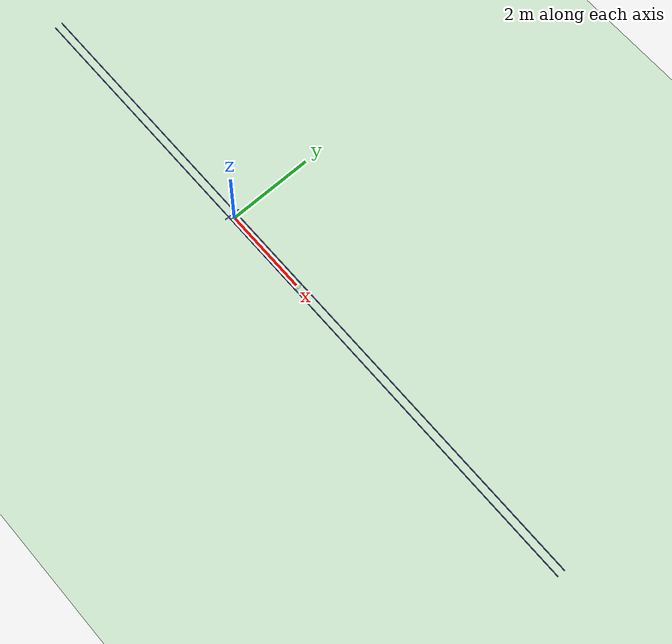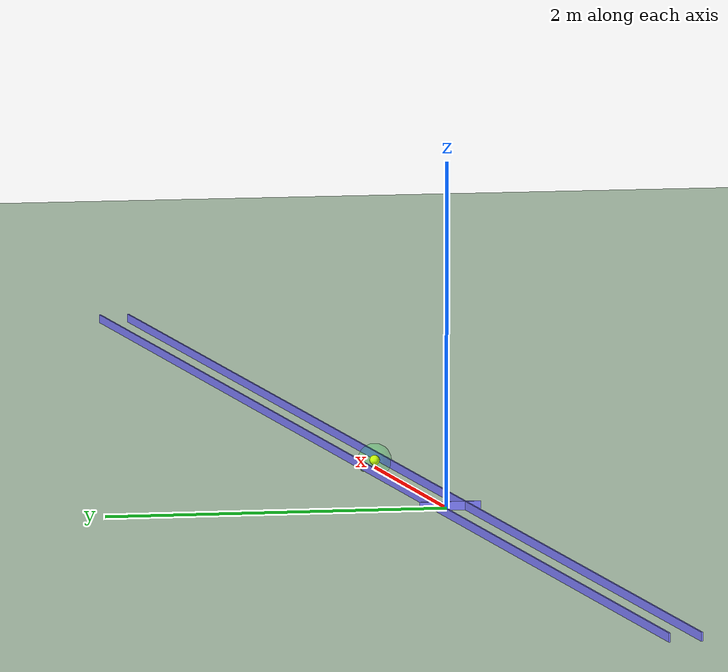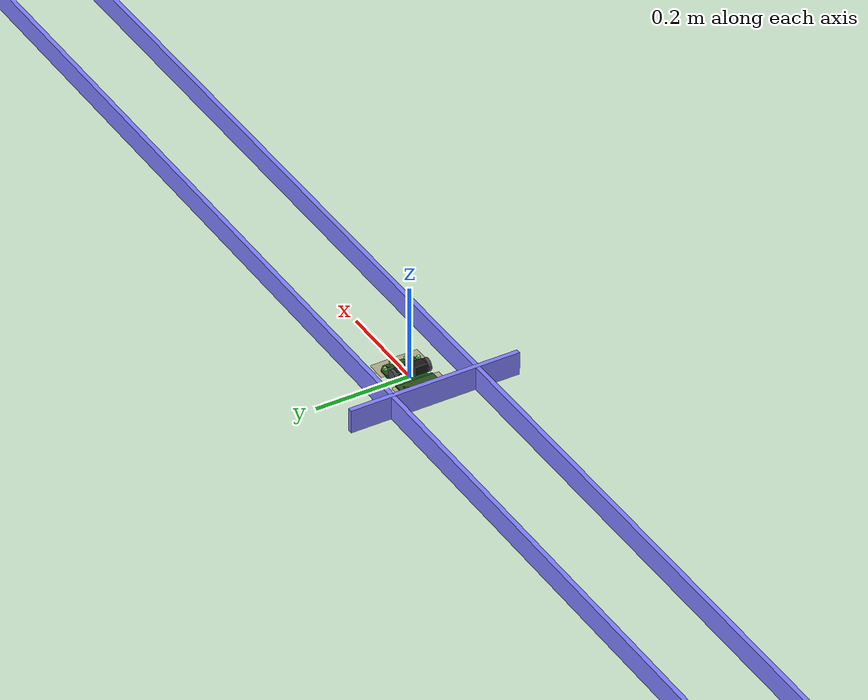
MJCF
<mujoco>
    <default>
        <default class="wheel">
            <geom type="cylinder" size=".0027 .0007" rgba=".5 .5 1 1" />
        </default>
    </default>

    <compiler angle="degree" coordinate="local" inertiafromgeom="true" />
    <option integrator="RK4" timestep="0.0001" />
    <asset>
        <texture builtin="gradient" height="100" rgb1="1 1 1" rgb2="0 0 0" type="skybox" width="100" />
        <texture builtin="flat" height="1278" mark="cross" markrgb="1 1 1" name="texgeom"
            random="0.01" rgb1="0.8 0.6 0.4" rgb2="0.8 0.6 0.4" type="cube" width="127" />
        <texture builtin="checker" height="100" name="texplane" rgb1="0 0 0" rgb2="0.8 0.8 0.8"
            type="2d" width="100" />
        <material name="MatPlane" reflectance="0.5" shininess="1" specular="1" texrepeat="60 60"
            texture="texplane" />
        <material name="geom" texture="texgeom" texuniform="true" />
    </asset>

    <worldbody>

        <geom conaffinity="1" condim="3" name="floor" friction="0.0 0.0 0.0" pos="0 0 0" rgba="0.8 0.9 0.8 1" size="40 40 40" type="plane"/>

        <body pos="0 0 1.8e-3">
            <freejoint />
            <body>
            <geom name="mein_body1" type="box" size="0.05 0.03 0.0016" friction="0.0 0.0 0.0" rgba="0.05 0.4 0.15 1" pos="0 0 0.001" />
            <geom name="mein_body_chip1" type="box" size="0.00707 0.00707 0.0016" friction="0.0 0.0 0.0" rgba="0.05 0.4 0.15 1" pos="0.04 0.03 0.001" euler="0 0 45" />
            <geom name="mein_body_chip2" type="box" size="0.00707 0.00707 0.0016" friction="0.0 0.0 0.0" rgba="0.05 0.4 0.15 1" pos="0.04 -0.03 0.001" euler="0 0 45" />
            <geom name="mein_body_chip3" type="box" size="0.00707 0.00707 0.0016" friction="0.0 0.0 0.0" rgba="0.05 0.4 0.15 1" pos="-0.04 0.03 0.001" euler="0 0 45" />
            <geom name="mein_body_chip4" type="box" size="0.00707 0.00707 0.0016" friction="0.0 0.0 0.0" rgba="0.05 0.4 0.15 1" pos="-0.04 -0.03 0.001" euler="0 0 45" />
            <geom name="mein_body4" type="box" size="0.013 0.04 0.0016" friction="0.0 0.0 0.0" rgba="0.05 0.4 0.15 1" pos="-0.027 0 0.001"/>
            <geom name="mein_body5" type="box" size="0.013 0.04 0.0016" friction="0.0 0.0 0.0" rgba="0.05 0.4 0.15 1" pos="0.027 0 0.001"/>
                <site name = "hit_box" type = "box" size = "0.02 0.05 0.0016" pos="0.04 0 0.003" rgba=".5 .2 0 .3"/>
                <site name = "hit_box2" type = "box" size = "0.02 0.05 0.0016" pos="-0.04 0 0.003" rgba=".5 .2 0 .3"/>

            </body>

            <site name="sensor_left_front" type="box" size="0.003 0.003 0.003" pos="0.031 0.036 0.01" zaxis="1 0 0.01" rgba=".5 1 .5 1"/>
              <!-- zaxisの３つめ　0.1でちょい上向き -->
            <site name="sensor_left_side" type="box" size="0.003 0.003 0.003" pos="0.043 0.016 0.01" zaxis="0.25 1 0" rgba=".5 1 .5 1"/>
            <site name="sensor_right_front" type="box" size="0.003 0.003 0.003" pos="0.031 -0.036 0.01" zaxis="1 0 0.01" rgba=".5 1 .5 1"/>
            <site name="sensor_right_side" type="box" size="0.003 0.003 0.003" pos="0.043 -0.016 0.01" zaxis="0.25 -1 0" rgba=".5 1 .5 1"/>

             <body name="left wheel" pos="-0.0 0.036 0.0125" zaxis="0 1 0">
                <joint name="left wheel joint" type="hinge" axis="0 0 1" limited="false" damping="0.002266" />
                <geom type="cylinder" size="0.0135 0.0035" rgba=".3 .3 0.3 1" />
                <site type="box" rgba="1 1 1 1" size=".0006 .0036 .0012" />
            </body>

            <body name="right wheel" pos="-0.0 -0.036 0.0125" zaxis="0 1 0">
                <joint name="right wheel joint" type="hinge" axis="0 0 1" limited="false" damping="0.002266" />
                <geom type="cylinder" size="0.0135 0.0035" rgba=".3 .3 0.3 1" />
                <site type="box" rgba="1 1 1 1" size=".0006 .0036 .0012" />
            </body>

            <body name="motorbox1" pos="0 -0.018 0.0135">
                <geom type="box" size="0.01 0.0135 0.01" rgba="0.1 0.1 0.1 1" />
            </body>

            <body name="motorbox2" pos="0 0.018 0.0135">
                <geom type="box" size="0.01 0.0135 0.01" rgba="0.1 0.1 0.1 1" />
            </body>

        </body>

        <body name="maze_wall2ss" pos="-0.09 0 0.025">
                <geom type="box" size="0.005 0.18 0.025" rgba=".5 .5 1 1" />
            </body>

<!-- かべかべかべｎ --><!-- かべかべかべｎ --><!-- かべかべかべｎ --><!-- かべかべかべｎ --><!-- かべかべかべｎ -->

        <body name="maze_wall2" pos="1.9 -0.09 0.025">
                <geom type="box" size="8 0.005 0.025" rgba=".5 .5 1 1" />
            </body>
            <body name="long_wall2" pos="1.9 0.09 0.025">
                <geom type="box" size="8 0.005 0.025" rgba=".5 .5 1 1" />
            </body>
<!-- かべかべかべｎ --><!-- かべかべかべｎ --><!-- かべかべかべｎ --><!-- かべかべかべｎ --><!-- かべかべかべｎ -->

            <body name="goal1" pos="2 0 0.045">
                <geom name="goal" type="sphere" size="0.03" rgba="1 1 0 1" />
                <site name="goal" type="sphere" size="0.1" rgba="0 1 0.2 0.2" />
            </body>

    </worldbody>
    <actuator>
        <motor name="right" joint="right wheel joint" gear="0.0185"/>
        <motor name="left" joint="left wheel joint" gear="0.0185"/>
    </actuator>

    <sensor>
        <rangefinder name="LF" site="sensor_left_front" cutoff="0.10"/>
        <rangefinder name="LS" site="sensor_left_side" cutoff="0.10"/>
        <rangefinder name="RF" site="sensor_right_front" cutoff="0.10"/>
        <rangefinder name="RS" site="sensor_right_side" cutoff="0.10"/>
        <touch name = "HB" site = "hit_box"/>
        <touch name = "HB2" site = "hit_box2"/>
    </sensor>
</mujoco>
